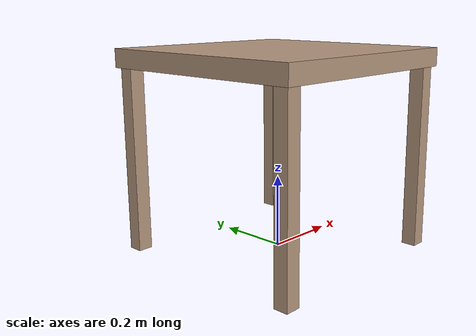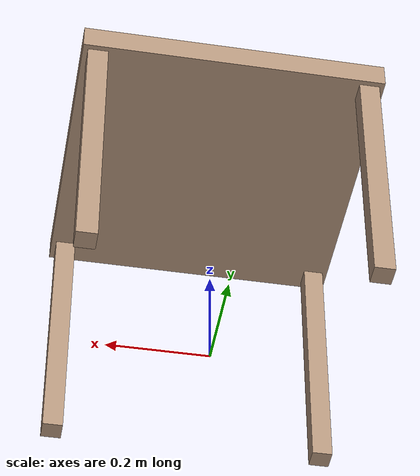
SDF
<?xml version="1.0"?>
<sdf version="1.9">
  <model name="table_low">
    <static>true</static>
    <link name="link">
      <collision name="collision_0">
        <pose>0 0 0.525 0 0 0</pose>
        <geometry><box><size>0.6 0.6 0.05</size></box></geometry>
      </collision>
      <visual name="visual_0">
        <pose>0 0 0.525 0 0 0</pose>
        <geometry><box><size>0.6 0.6 0.05</size></box></geometry>
        <material>
          <ambient>0.72 0.60 0.50 1</ambient>
          <diffuse>0.72 0.60 0.50 1</diffuse>
        </material>
      </visual>
      <collision name="collision_1">
        <pose>0.27 0.27 0.25 0 0 0</pose>
        <geometry><box><size>0.04 0.04 0.5</size></box></geometry>
      </collision>
      <visual name="visual_1">
        <pose>0.27 0.27 0.25 0 0 0</pose>
        <geometry><box><size>0.04 0.04 0.5</size></box></geometry>
        <material>
          <ambient>0.72 0.60 0.50 1</ambient>
          <diffuse>0.72 0.60 0.50 1</diffuse>
        </material>
      </visual>
      <collision name="collision_2">
        <pose>0.27 -0.27 0.25 0 0 0</pose>
        <geometry><box><size>0.04 0.04 0.5</size></box></geometry>
      </collision>
      <visual name="visual_2">
        <pose>0.27 -0.27 0.25 0 0 0</pose>
        <geometry><box><size>0.04 0.04 0.5</size></box></geometry>
        <material>
          <ambient>0.72 0.60 0.50 1</ambient>
          <diffuse>0.72 0.60 0.50 1</diffuse>
        </material>
      </visual>
      <collision name="collision_3">
        <pose>-0.27 0.27 0.25 0 0 0</pose>
        <geometry><box><size>0.04 0.04 0.5</size></box></geometry>
      </collision>
      <visual name="visual_3">
        <pose>-0.27 0.27 0.25 0 0 0</pose>
        <geometry><box><size>0.04 0.04 0.5</size></box></geometry>
        <material>
          <ambient>0.72 0.60 0.50 1</ambient>
          <diffuse>0.72 0.60 0.50 1</diffuse>
        </material>
      </visual>
      <collision name="collision_4">
        <pose>-0.27 -0.27 0.25 0 0 0</pose>
        <geometry><box><size>0.04 0.04 0.5</size></box></geometry>
      </collision>
      <visual name="visual_4">
        <pose>-0.27 -0.27 0.25 0 0 0</pose>
        <geometry><box><size>0.04 0.04 0.5</size></box></geometry>
        <material>
          <ambient>0.72 0.60 0.50 1</ambient>
          <diffuse>0.72 0.60 0.50 1</diffuse>
        </material>
      </visual>
    </link>
  </model>
</sdf>
